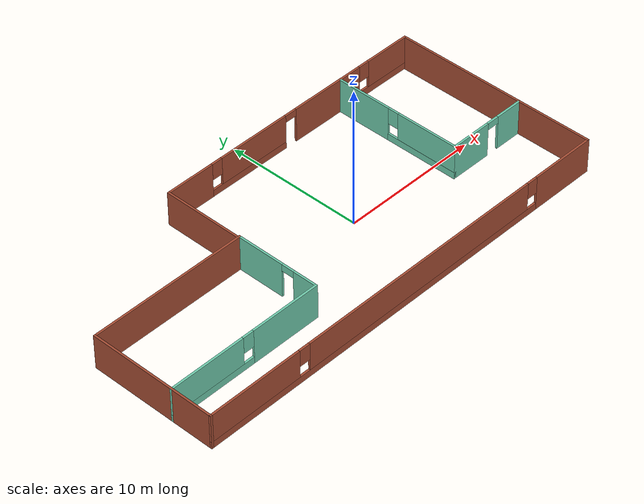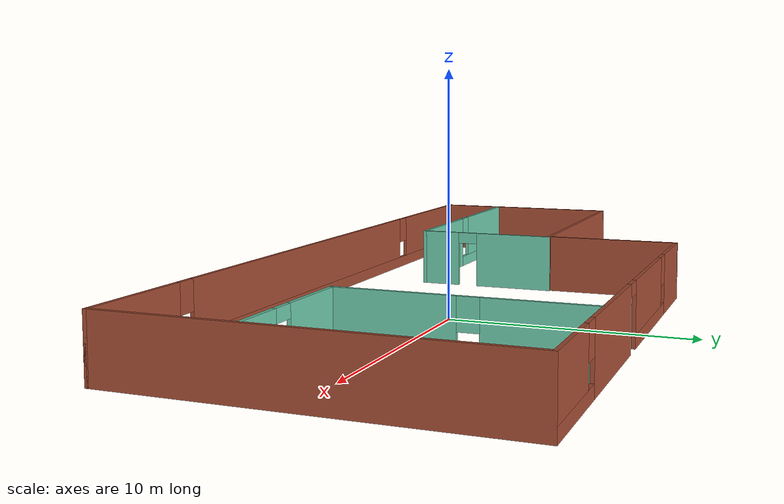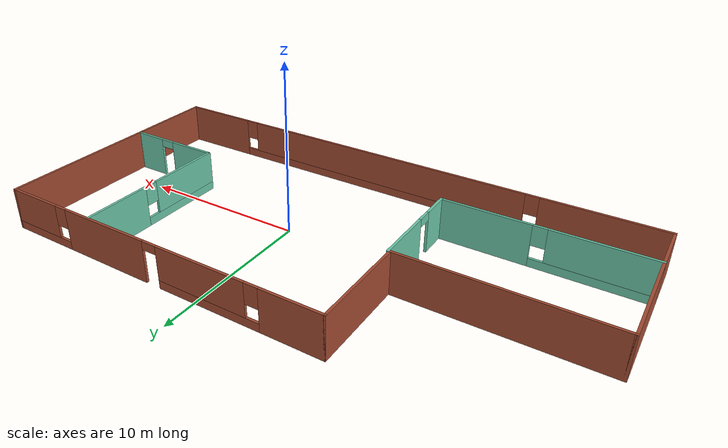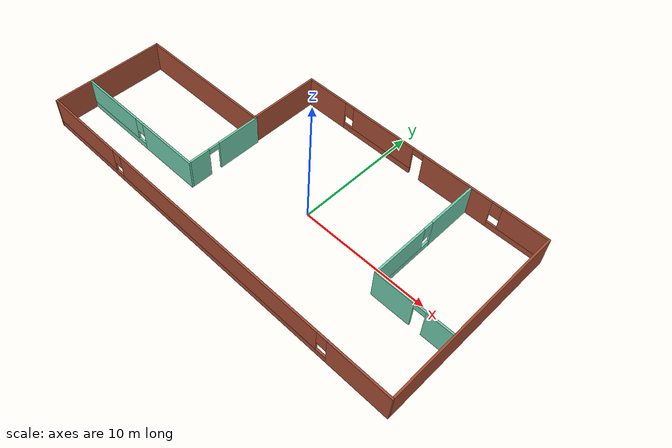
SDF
<?xml version='1.0'?>
<sdf version='1.6'>
  <model name='building'>
    <pose frame=''>-2.81591 0.441181 0 0 -0 0</pose>
    <link name='Wall_0'>
      <collision name='Wall_0_Collision'>
        <geometry>
          <box>
            <size>5.75 0.15 2.5</size>
          </box>
        </geometry>
        <pose frame=''>0 0 1.25 0 -0 0</pose>
      </collision>
      <visual name='Wall_0_Visual'>
        <pose frame=''>0 0 1.25 0 -0 0</pose>
        <geometry>
          <box>
            <size>5.75 0.15 2.5</size>
          </box>
        </geometry>
        <material>
          <script>
            <uri>file://media/materials/scripts/gazebo.material</uri>
            <name>Gazebo/Bricks</name>
          </script>
          <ambient>1 1 1 1</ambient>
        </material>
        <meta>
          <layer>0</layer>
        </meta>
      </visual>
      <pose frame=''>-4.675 4.625 0 0 -0 1.5708</pose>
    </link>
    <link name='Wall_1'>
      <pose frame=''>5.625 7.425 0 0 -0 0</pose>
      <visual name='Wall_1_Visual_0'>
        <pose frame=''>-8.57489 0 1.25 0 -0 0</pose>
        <geometry>
          <box>
            <size>3.60022 0.15 2.5</size>
          </box>
        </geometry>
        <material>
          <script>
            <uri>file://media/materials/scripts/gazebo.material</uri>
            <name>Gazebo/Bricks</name>
          </script>
          <ambient>1 1 1 1</ambient>
        </material>
        <meta>
          <layer>0</layer>
        </meta>
      </visual>
      <collision name='Wall_1_Collision_0'>
        <geometry>
          <box>
            <size>3.60022 0.15 2.5</size>
          </box>
        </geometry>
        <pose frame=''>-8.57489 0 1.25 0 -0 0</pose>
      </collision>
      <visual name='Wall_1_Visual_1'>
        <pose frame=''>3.22716 0 1.25 0 -0 0</pose>
        <geometry>
          <box>
            <size>5.6773 0.15 2.5</size>
          </box>
        </geometry>
        <material>
          <script>
            <uri>file://media/materials/scripts/gazebo.material</uri>
            <name>Gazebo/Bricks</name>
          </script>
          <ambient>1 1 1 1</ambient>
        </material>
        <meta>
          <layer>0</layer>
        </meta>
      </visual>
      <collision name='Wall_1_Collision_1'>
        <geometry>
          <box>
            <size>5.6773 0.15 2.5</size>
          </box>
        </geometry>
        <pose frame=''>3.22716 0 1.25 0 -0 0</pose>
      </collision>
      <visual name='Wall_1_Visual_2'>
        <pose frame=''>-3.64314 0 0.25 0 -0 0</pose>
        <geometry>
          <box>
            <size>6.2633 0.15 0.5</size>
          </box>
        </geometry>
        <material>
          <script>
            <uri>file://media/materials/scripts/gazebo.material</uri>
            <name>Gazebo/Bricks</name>
          </script>
          <ambient>1 1 1 1</ambient>
        </material>
        <meta>
          <layer>0</layer>
        </meta>
      </visual>
      <collision name='Wall_1_Collision_2'>
        <geometry>
          <box>
            <size>6.2633 0.15 0.5</size>
          </box>
        </geometry>
        <pose frame=''>-3.64314 0 0.25 0 -0 0</pose>
      </collision>
      <visual name='Wall_1_Visual_3'>
        <pose frame=''>8.22041 0 0.25 0 -0 0</pose>
        <geometry>
          <box>
            <size>4.30918 0.15 0.5</size>
          </box>
        </geometry>
        <material>
          <script>
            <uri>file://media/materials/scripts/gazebo.material</uri>
            <name>Gazebo/Bricks</name>
          </script>
          <ambient>1 1 1 1</ambient>
        </material>
        <meta>
          <layer>0</layer>
        </meta>
      </visual>
      <collision name='Wall_1_Collision_3'>
        <geometry>
          <box>
            <size>4.30918 0.15 0.5</size>
          </box>
        </geometry>
        <pose frame=''>8.22041 0 0.25 0 -0 0</pose>
      </collision>
      <visual name='Wall_1_Visual_4'>
        <pose frame=''>-3.24314 0 1.5 0 -0 0</pose>
        <geometry>
          <box>
            <size>5.46329 0.15 2</size>
          </box>
        </geometry>
        <material>
          <script>
            <uri>file://media/materials/scripts/gazebo.material</uri>
            <name>Gazebo/Bricks</name>
          </script>
          <ambient>1 1 1 1</ambient>
        </material>
        <meta>
          <layer>0</layer>
        </meta>
      </visual>
      <collision name='Wall_1_Collision_4'>
        <geometry>
          <box>
            <size>5.46329 0.15 2</size>
          </box>
        </geometry>
        <pose frame=''>-3.24314 0 1.5 0 -0 0</pose>
      </collision>
      <visual name='Wall_1_Visual_5'>
        <pose frame=''>-3.24314 0 1.5 0 -0 0</pose>
        <geometry>
          <box>
            <size>5.46329 0.15 2</size>
          </box>
        </geometry>
        <material>
          <script>
            <uri>file://media/materials/scripts/gazebo.material</uri>
            <name>Gazebo/Bricks</name>
          </script>
          <ambient>1 1 1 1</ambient>
        </material>
        <meta>
          <layer>0</layer>
        </meta>
      </visual>
      <collision name='Wall_1_Collision_5'>
        <geometry>
          <box>
            <size>5.46329 0.15 2</size>
          </box>
        </geometry>
        <pose frame=''>-3.24314 0 1.5 0 -0 0</pose>
      </collision>
      <visual name='Wall_1_Visual_6'>
        <pose frame=''>8.62041 0 1.5 0 -0 0</pose>
        <geometry>
          <box>
            <size>3.50918 0.15 2</size>
          </box>
        </geometry>
        <material>
          <script>
            <uri>file://media/materials/scripts/gazebo.material</uri>
            <name>Gazebo/Bricks</name>
          </script>
          <ambient>1 1 1 1</ambient>
        </material>
        <meta>
          <layer>0</layer>
        </meta>
      </visual>
      <collision name='Wall_1_Collision_6'>
        <geometry>
          <box>
            <size>3.50918 0.15 2</size>
          </box>
        </geometry>
        <pose frame=''>8.62041 0 1.5 0 -0 0</pose>
      </collision>
      <visual name='Wall_1_Visual_7'>
        <pose frame=''>-6.37478 0 1.9 0 -0 0</pose>
        <geometry>
          <box>
            <size>0.8 0.15 1.2</size>
          </box>
        </geometry>
        <material>
          <script>
            <uri>file://media/materials/scripts/gazebo.material</uri>
            <name>Gazebo/Bricks</name>
          </script>
          <ambient>1 1 1 1</ambient>
        </material>
        <meta>
          <layer>0</layer>
        </meta>
      </visual>
      <collision name='Wall_1_Collision_7'>
        <geometry>
          <box>
            <size>0.8 0.15 1.2</size>
          </box>
        </geometry>
        <pose frame=''>-6.37478 0 1.9 0 -0 0</pose>
      </collision>
      <visual name='Wall_1_Visual_8'>
        <pose frame=''>6.46582 0 1.9 0 -0 0</pose>
        <geometry>
          <box>
            <size>0.8 0.15 1.2</size>
          </box>
        </geometry>
        <material>
          <script>
            <uri>file://media/materials/scripts/gazebo.material</uri>
            <name>Gazebo/Bricks</name>
          </script>
          <ambient>1 1 1 1</ambient>
        </material>
        <meta>
          <layer>0</layer>
        </meta>
      </visual>
      <collision name='Wall_1_Collision_8'>
        <geometry>
          <box>
            <size>0.8 0.15 1.2</size>
          </box>
        </geometry>
        <pose frame=''>6.46582 0 1.9 0 -0 0</pose>
      </collision>
      <visual name='Wall_1_Visual_9'>
        <pose frame=''>-0.061489 0 2.25 0 -0 0</pose>
        <geometry>
          <box>
            <size>0.9 0.15 0.5</size>
          </box>
        </geometry>
        <material>
          <script>
            <uri>file://media/materials/scripts/gazebo.material</uri>
            <name>Gazebo/Bricks</name>
          </script>
          <ambient>1 1 1 1</ambient>
        </material>
        <meta>
          <layer>0</layer>
        </meta>
      </visual>
      <collision name='Wall_1_Collision_9'>
        <geometry>
          <box>
            <size>0.9 0.15 0.5</size>
          </box>
        </geometry>
        <pose frame=''>-0.061489 0 2.25 0 -0 0</pose>
      </collision>
      <visual name='Wall_1_Visual_10'>
        <pose frame=''>-0.061489 0 2.25 0 -0 0</pose>
        <geometry>
          <box>
            <size>0.9 0.15 0.5</size>
          </box>
        </geometry>
        <material>
          <script>
            <uri>file://media/materials/scripts/gazebo.material</uri>
            <name>Gazebo/Bricks</name>
          </script>
          <ambient>1 1 1 1</ambient>
        </material>
        <meta>
          <layer>0</layer>
        </meta>
      </visual>
      <collision name='Wall_1_Collision_10'>
        <geometry>
          <box>
            <size>0.9 0.15 0.5</size>
          </box>
        </geometry>
        <pose frame=''>-0.061489 0 2.25 0 -0 0</pose>
      </collision>
    </link>
    <link name='Wall_10'>
      <pose frame=''>10.0042 2.65278 0 0 0 -1.5708</pose>
      <visual name='Wall_10_Visual_0'>
        <pose frame=''>-2.7189 0 1.25 0 -0 0</pose>
        <geometry>
          <box>
            <size>4.0622 0.15 2.5</size>
          </box>
        </geometry>
        <material>
          <script>
            <uri>file://media/materials/scripts/gazebo.material</uri>
            <name>Gazebo/Grey</name>
          </script>
          <ambient>0.435294 0.796078 0.67451 1</ambient>
        </material>
        <meta>
          <layer>0</layer>
        </meta>
      </visual>
      <collision name='Wall_10_Collision_0'>
        <geometry>
          <box>
            <size>4.0622 0.15 2.5</size>
          </box>
        </geometry>
        <pose frame=''>-2.7189 0 1.25 0 -0 0</pose>
      </collision>
      <visual name='Wall_10_Visual_1'>
        <pose frame=''>2.0311 0 0.25 0 -0 0</pose>
        <geometry>
          <box>
            <size>5.4378 0.15 0.5</size>
          </box>
        </geometry>
        <material>
          <script>
            <uri>file://media/materials/scripts/gazebo.material</uri>
            <name>Gazebo/Grey</name>
          </script>
          <ambient>0.435294 0.796078 0.67451 1</ambient>
        </material>
        <meta>
          <layer>0</layer>
        </meta>
      </visual>
      <collision name='Wall_10_Collision_1'>
        <geometry>
          <box>
            <size>5.4378 0.15 0.5</size>
          </box>
        </geometry>
        <pose frame=''>2.0311 0 0.25 0 -0 0</pose>
      </collision>
      <visual name='Wall_10_Visual_2'>
        <pose frame=''>2.4311 0 1.5 0 -0 0</pose>
        <geometry>
          <box>
            <size>4.63779 0.15 2</size>
          </box>
        </geometry>
        <material>
          <script>
            <uri>file://media/materials/scripts/gazebo.material</uri>
            <name>Gazebo/Grey</name>
          </script>
          <ambient>0.435294 0.796078 0.67451 1</ambient>
        </material>
        <meta>
          <layer>0</layer>
        </meta>
      </visual>
      <collision name='Wall_10_Collision_2'>
        <geometry>
          <box>
            <size>4.63779 0.15 2</size>
          </box>
        </geometry>
        <pose frame=''>2.4311 0 1.5 0 -0 0</pose>
      </collision>
      <visual name='Wall_10_Visual_3'>
        <pose frame=''>-0.287795 0 1.9 0 -0 0</pose>
        <geometry>
          <box>
            <size>0.8 0.15 1.2</size>
          </box>
        </geometry>
        <material>
          <script>
            <uri>file://media/materials/scripts/gazebo.material</uri>
            <name>Gazebo/Grey</name>
          </script>
          <ambient>0.435294 0.796078 0.67451 1</ambient>
        </material>
        <meta>
          <layer>0</layer>
        </meta>
      </visual>
      <collision name='Wall_10_Collision_3'>
        <geometry>
          <box>
            <size>0.8 0.15 1.2</size>
          </box>
        </geometry>
        <pose frame=''>-0.287795 0 1.9 0 -0 0</pose>
      </collision>
    </link>
    <link name='Wall_11'>
      <pose frame=''>12.9292 -2.02222 0 0 -0 0</pose>
      <visual name='Wall_11_Visual_0'>
        <pose frame=''>-1.47542 0 1.25 0 -0 0</pose>
        <geometry>
          <box>
            <size>3.04916 0.15 2.5</size>
          </box>
        </geometry>
        <material>
          <script>
            <uri>file://media/materials/scripts/gazebo.material</uri>
            <name>Gazebo/Grey</name>
          </script>
          <ambient>0.435294 0.796078 0.67451 1</ambient>
        </material>
        <meta>
          <layer>0</layer>
        </meta>
      </visual>
      <collision name='Wall_11_Collision_0'>
        <geometry>
          <box>
            <size>3.04916 0.15 2.5</size>
          </box>
        </geometry>
        <pose frame=''>-1.47542 0 1.25 0 -0 0</pose>
      </collision>
      <visual name='Wall_11_Visual_1'>
        <pose frame=''>1.97458 0 1.25 0 -0 0</pose>
        <geometry>
          <box>
            <size>2.05084 0.15 2.5</size>
          </box>
        </geometry>
        <material>
          <script>
            <uri>file://media/materials/scripts/gazebo.material</uri>
            <name>Gazebo/Grey</name>
          </script>
          <ambient>0.435294 0.796078 0.67451 1</ambient>
        </material>
        <meta>
          <layer>0</layer>
        </meta>
      </visual>
      <collision name='Wall_11_Collision_1'>
        <geometry>
          <box>
            <size>2.05084 0.15 2.5</size>
          </box>
        </geometry>
        <pose frame=''>1.97458 0 1.25 0 -0 0</pose>
      </collision>
      <visual name='Wall_11_Visual_2'>
        <pose frame=''>0.49916 0 2.25 0 -0 0</pose>
        <geometry>
          <box>
            <size>0.9 0.15 0.5</size>
          </box>
        </geometry>
        <material>
          <script>
            <uri>file://media/materials/scripts/gazebo.material</uri>
            <name>Gazebo/Grey</name>
          </script>
          <ambient>0.435294 0.796078 0.67451 1</ambient>
        </material>
        <meta>
          <layer>0</layer>
        </meta>
      </visual>
      <collision name='Wall_11_Collision_2'>
        <geometry>
          <box>
            <size>0.9 0.15 0.5</size>
          </box>
        </geometry>
        <pose frame=''>0.49916 0 2.25 0 -0 0</pose>
      </collision>
    </link>
    <link name='Wall_2'>
      <collision name='Wall_2_Collision'>
        <geometry>
          <box>
            <size>15 0.15 2.5</size>
          </box>
        </geometry>
        <pose frame=''>0 0 1.25 0 -0 0</pose>
      </collision>
      <visual name='Wall_2_Visual'>
        <pose frame=''>0 0 1.25 0 -0 0</pose>
        <geometry>
          <box>
            <size>15 0.15 2.5</size>
          </box>
        </geometry>
        <material>
          <script>
            <uri>file://media/materials/scripts/gazebo.material</uri>
            <name>Gazebo/Bricks</name>
          </script>
          <ambient>1 1 1 1</ambient>
        </material>
        <meta>
          <layer>0</layer>
        </meta>
      </visual>
      <pose frame=''>15.925 0 0 0 0 -1.5708</pose>
    </link>
    <link name='Wall_3'>
      <pose frame=''>0 -7.425 0 0 -0 3.14159</pose>
      <visual name='Wall_3_Visual_0'>
        <pose frame=''>-13.5766 0 1.25 0 -0 0</pose>
        <geometry>
          <box>
            <size>4.84675 0.15 2.5</size>
          </box>
        </geometry>
        <material>
          <script>
            <uri>file://media/materials/scripts/gazebo.material</uri>
            <name>Gazebo/Bricks</name>
          </script>
          <ambient>1 1 1 1</ambient>
        </material>
        <meta>
          <layer>0</layer>
        </meta>
      </visual>
      <collision name='Wall_3_Collision_0'>
        <geometry>
          <box>
            <size>4.84675 0.15 2.5</size>
          </box>
        </geometry>
        <pose frame=''>-13.5766 0 1.25 0 -0 0</pose>
      </collision>
      <visual name='Wall_3_Visual_1'>
        <pose frame=''>2.42337 0 0.25 0 -0 0</pose>
        <geometry>
          <box>
            <size>27.1533 0.15 0.5</size>
          </box>
        </geometry>
        <material>
          <script>
            <uri>file://media/materials/scripts/gazebo.material</uri>
            <name>Gazebo/Bricks</name>
          </script>
          <ambient>1 1 1 1</ambient>
        </material>
        <meta>
          <layer>0</layer>
        </meta>
      </visual>
      <collision name='Wall_3_Collision_1'>
        <geometry>
          <box>
            <size>27.1533 0.15 0.5</size>
          </box>
        </geometry>
        <pose frame=''>2.42337 0 0.25 0 -0 0</pose>
      </collision>
      <visual name='Wall_3_Visual_2'>
        <pose frame=''>-1.04255 0 1.5 0 -0 0</pose>
        <geometry>
          <box>
            <size>18.6214 0.15 2</size>
          </box>
        </geometry>
        <material>
          <script>
            <uri>file://media/materials/scripts/gazebo.material</uri>
            <name>Gazebo/Bricks</name>
          </script>
          <ambient>1 1 1 1</ambient>
        </material>
        <meta>
          <layer>0</layer>
        </meta>
      </visual>
      <collision name='Wall_3_Collision_2'>
        <geometry>
          <box>
            <size>18.6214 0.15 2</size>
          </box>
        </geometry>
        <pose frame=''>-1.04255 0 1.5 0 -0 0</pose>
      </collision>
      <visual name='Wall_3_Visual_3'>
        <pose frame=''>12.5341 0 1.5 0 -0 0</pose>
        <geometry>
          <box>
            <size>6.93185 0.15 2</size>
          </box>
        </geometry>
        <material>
          <script>
            <uri>file://media/materials/scripts/gazebo.material</uri>
            <name>Gazebo/Bricks</name>
          </script>
          <ambient>1 1 1 1</ambient>
        </material>
        <meta>
          <layer>0</layer>
        </meta>
      </visual>
      <collision name='Wall_3_Collision_3'>
        <geometry>
          <box>
            <size>6.93185 0.15 2</size>
          </box>
        </geometry>
        <pose frame=''>12.5341 0 1.5 0 -0 0</pose>
      </collision>
      <visual name='Wall_3_Visual_4'>
        <pose frame=''>-10.7533 0 1.9 0 -0 0</pose>
        <geometry>
          <box>
            <size>0.8 0.15 1.2</size>
          </box>
        </geometry>
        <material>
          <script>
            <uri>file://media/materials/scripts/gazebo.material</uri>
            <name>Gazebo/Bricks</name>
          </script>
          <ambient>1 1 1 1</ambient>
        </material>
        <meta>
          <layer>0</layer>
        </meta>
      </visual>
      <collision name='Wall_3_Collision_4'>
        <geometry>
          <box>
            <size>0.8 0.15 1.2</size>
          </box>
        </geometry>
        <pose frame=''>-10.7533 0 1.9 0 -0 0</pose>
      </collision>
      <visual name='Wall_3_Visual_5'>
        <pose frame=''>8.66815 0 1.9 0 -0 0</pose>
        <geometry>
          <box>
            <size>0.8 0.15 1.2</size>
          </box>
        </geometry>
        <material>
          <script>
            <uri>file://media/materials/scripts/gazebo.material</uri>
            <name>Gazebo/Bricks</name>
          </script>
          <ambient>1 1 1 1</ambient>
        </material>
        <meta>
          <layer>0</layer>
        </meta>
      </visual>
      <collision name='Wall_3_Collision_5'>
        <geometry>
          <box>
            <size>0.8 0.15 1.2</size>
          </box>
        </geometry>
        <pose frame=''>8.66815 0 1.9 0 -0 0</pose>
      </collision>
    </link>
    <link name='Wall_4'>
      <collision name='Wall_4_Collision'>
        <geometry>
          <box>
            <size>9.25 0.15 2.5</size>
          </box>
        </geometry>
        <pose frame=''>0 0 1.25 0 -0 0</pose>
      </collision>
      <visual name='Wall_4_Visual'>
        <pose frame=''>0 0 1.25 0 -0 0</pose>
        <geometry>
          <box>
            <size>9.25 0.15 2.5</size>
          </box>
        </geometry>
        <material>
          <script>
            <uri>file://media/materials/scripts/gazebo.material</uri>
            <name>Gazebo/Bricks</name>
          </script>
          <ambient>1 1 1 1</ambient>
        </material>
        <meta>
          <layer>0</layer>
        </meta>
      </visual>
      <pose frame=''>-15.925 -2.875 0 0 -0 1.5708</pose>
    </link>
    <link name='Wall_5'>
      <collision name='Wall_5_Collision'>
        <geometry>
          <box>
            <size>11.5 0.15 2.5</size>
          </box>
        </geometry>
        <pose frame=''>0 0 1.25 0 -0 0</pose>
      </collision>
      <visual name='Wall_5_Visual'>
        <pose frame=''>0 0 1.25 0 -0 0</pose>
        <geometry>
          <box>
            <size>11.5 0.15 2.5</size>
          </box>
        </geometry>
        <material>
          <script>
            <uri>file://media/materials/scripts/gazebo.material</uri>
            <name>Gazebo/Bricks</name>
          </script>
          <ambient>1 1 1 1</ambient>
        </material>
        <meta>
          <layer>0</layer>
        </meta>
      </visual>
      <pose frame=''>-10.25 1.675 0 0 -0 0</pose>
    </link>
    <link name='Wall_7'>
      <pose frame=''>-4.575 -1.375 0 0 0 -1.5708</pose>
      <visual name='Wall_7_Visual_0'>
        <pose frame=''>-1.35042 0 1.25 0 -0 0</pose>
        <geometry>
          <box>
            <size>3.54916 0.15 2.5</size>
          </box>
        </geometry>
        <material>
          <script>
            <uri>file://media/materials/scripts/gazebo.material</uri>
            <name>Gazebo/Grey</name>
          </script>
          <ambient>0.435294 0.796078 0.67451 1</ambient>
        </material>
        <meta>
          <layer>0</layer>
        </meta>
      </visual>
      <collision name='Wall_7_Collision_0'>
        <geometry>
          <box>
            <size>3.54916 0.15 2.5</size>
          </box>
        </geometry>
        <pose frame=''>-1.35042 0 1.25 0 -0 0</pose>
      </collision>
      <visual name='Wall_7_Visual_1'>
        <pose frame=''>2.22458 0 1.25 0 -0 0</pose>
        <geometry>
          <box>
            <size>1.80083 0.15 2.5</size>
          </box>
        </geometry>
        <material>
          <script>
            <uri>file://media/materials/scripts/gazebo.material</uri>
            <name>Gazebo/Grey</name>
          </script>
          <ambient>0.435294 0.796078 0.67451 1</ambient>
        </material>
        <meta>
          <layer>0</layer>
        </meta>
      </visual>
      <collision name='Wall_7_Collision_1'>
        <geometry>
          <box>
            <size>1.80083 0.15 2.5</size>
          </box>
        </geometry>
        <pose frame=''>2.22458 0 1.25 0 -0 0</pose>
      </collision>
      <visual name='Wall_7_Visual_2'>
        <pose frame=''>0.874165 0 2.25 0 -0 0</pose>
        <geometry>
          <box>
            <size>0.9 0.15 0.5</size>
          </box>
        </geometry>
        <material>
          <script>
            <uri>file://media/materials/scripts/gazebo.material</uri>
            <name>Gazebo/Grey</name>
          </script>
          <ambient>0.435294 0.796078 0.67451 1</ambient>
        </material>
        <meta>
          <layer>0</layer>
        </meta>
      </visual>
      <collision name='Wall_7_Collision_2'>
        <geometry>
          <box>
            <size>0.9 0.15 0.5</size>
          </box>
        </geometry>
        <pose frame=''>0.874165 0 2.25 0 -0 0</pose>
      </collision>
    </link>
    <link name='Wall_8'>
      <pose frame=''>-10.25 -4.425 0 0 -0 3.14159</pose>
      <visual name='Wall_8_Visual_0'>
        <pose frame=''>-3.17039 0 1.25 0 -0 0</pose>
        <geometry>
          <box>
            <size>5.15922 0.15 2.5</size>
          </box>
        </geometry>
        <material>
          <script>
            <uri>file://media/materials/scripts/gazebo.material</uri>
            <name>Gazebo/Grey</name>
          </script>
          <ambient>0.435294 0.796078 0.67451 1</ambient>
        </material>
        <meta>
          <layer>0</layer>
        </meta>
      </visual>
      <collision name='Wall_8_Collision_0'>
        <geometry>
          <box>
            <size>5.15922 0.15 2.5</size>
          </box>
        </geometry>
        <pose frame=''>-3.17039 0 1.25 0 -0 0</pose>
      </collision>
      <visual name='Wall_8_Visual_1'>
        <pose frame=''>2.57961 0 0.25 0 -0 0</pose>
        <geometry>
          <box>
            <size>6.34078 0.15 0.5</size>
          </box>
        </geometry>
        <material>
          <script>
            <uri>file://media/materials/scripts/gazebo.material</uri>
            <name>Gazebo/Grey</name>
          </script>
          <ambient>0.435294 0.796078 0.67451 1</ambient>
        </material>
        <meta>
          <layer>0</layer>
        </meta>
      </visual>
      <collision name='Wall_8_Collision_1'>
        <geometry>
          <box>
            <size>6.34078 0.15 0.5</size>
          </box>
        </geometry>
        <pose frame=''>2.57961 0 0.25 0 -0 0</pose>
      </collision>
      <visual name='Wall_8_Visual_2'>
        <pose frame=''>2.97961 0 1.5 0 -0 0</pose>
        <geometry>
          <box>
            <size>5.54078 0.15 2</size>
          </box>
        </geometry>
        <material>
          <script>
            <uri>file://media/materials/scripts/gazebo.material</uri>
            <name>Gazebo/Grey</name>
          </script>
          <ambient>0.435294 0.796078 0.67451 1</ambient>
        </material>
        <meta>
          <layer>0</layer>
        </meta>
      </visual>
      <collision name='Wall_8_Collision_2'>
        <geometry>
          <box>
            <size>5.54078 0.15 2</size>
          </box>
        </geometry>
        <pose frame=''>2.97961 0 1.5 0 -0 0</pose>
      </collision>
      <visual name='Wall_8_Visual_3'>
        <pose frame=''>-0.190782 0 1.9 0 -0 0</pose>
        <geometry>
          <box>
            <size>0.8 0.15 1.2</size>
          </box>
        </geometry>
        <material>
          <script>
            <uri>file://media/materials/scripts/gazebo.material</uri>
            <name>Gazebo/Grey</name>
          </script>
          <ambient>0.435294 0.796078 0.67451 1</ambient>
        </material>
        <meta>
          <layer>0</layer>
        </meta>
      </visual>
      <collision name='Wall_8_Collision_3'>
        <geometry>
          <box>
            <size>0.8 0.15 1.2</size>
          </box>
        </geometry>
        <pose frame=''>-0.190782 0 1.9 0 -0 0</pose>
      </collision>
    </link>
    <static>1</static>
  </model>
</sdf>
